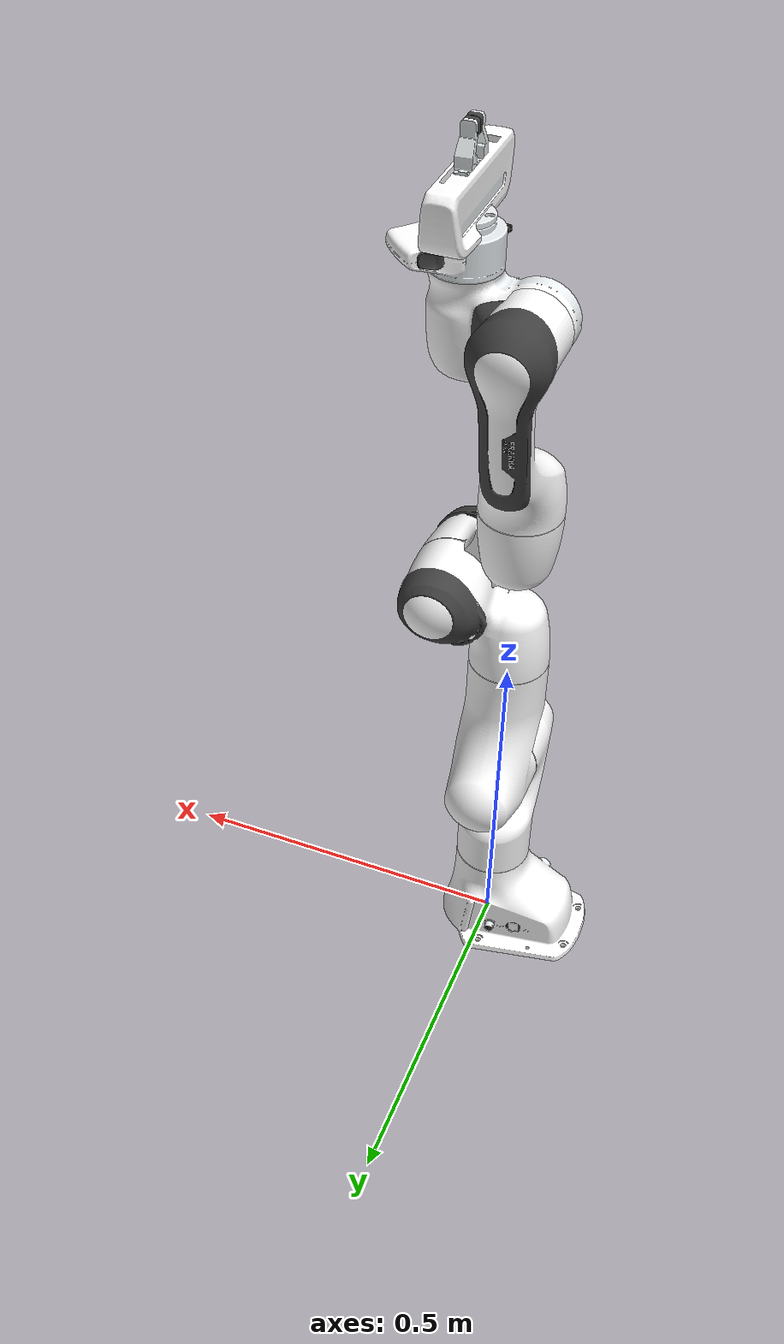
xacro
<?xml version="1.0" encoding="utf-8"?>
<robot xmlns:xacro="http://www.ros.org/wiki/xacro" name="panda">

  <!-- Empty link to referr everything to -->
  <link name="world" />
  <!-- Include arm and hand xacro files-->
  <xacro:include filename="panda_arm.xacro" />
  <xacro:include filename="panda_hand.xacro" />

  <!-- call the arm macro-->
  <xacro:panda_arm />
  <!-- call the hand macro-->
  <xacro:panda_hand ns="panda" rpy="0 0 0" connected_to="panda_link8" />

</robot>

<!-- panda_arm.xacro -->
<robot xmlns:xacro="http://www.ros.org/wiki/xacro" name="panda_arm">

  <!--Correct
  masses-->
  <xacro:property name="mass_link0" value="3.06357" />
  <xacro:property name="mass_link1" value="2.34471" />
  <xacro:property name="mass_link2" value="2.36414" />
  <xacro:property name="mass_link3" value="2.38050" />
  <xacro:property name="mass_link4" value="2.42754" />
  <xacro:property name="mass_link5" value="3.49611" />
  <xacro:property name="mass_link6" value="1.46736" />
  <xacro:property name="mass_link7" value="0.45606" />
  <xacro:property name="mass_link8" value="0.001" />

  <!-- Wrong masses to test adaptability of the algorithms, on purpose off by 20% -->

  <xacro:property name="link0_cog" value="-0.029190 -0.000879 0.056603" />
  <xacro:property name="link1_cog" value="0.000011 -0.031266 -0.069373" />
  <xacro:property name="link2_cog" value="-0.000013 -0.070322 0.031178" />
  <xacro:property name="link3_cog" value="0.044348 0.024928 -0.038130" />
  <xacro:property name="link4_cog" value="-0.038550 0.039526 0.024716" />
  <xacro:property name="link5_cog" value="-0.000064 0.038412 -0.109970" />
  <xacro:property name="link6_cog" value="0.051002 0.006933 0.006169" />
  <xacro:property name="link7_cog" value="0.010361 0.010360 0.079108" />

  <xacro:macro name="cylinder_inertial" params="radius length mass *origin">
    <inertial>
      <mass value="${mass}" />
      <xacro:insert_block name="origin" />
      <inertia ixx="${0.0833333 * mass * (3 * radius * radius + length * length)}" ixy="0.0"
        ixz="0.0"
        iyy="${0.0833333 * mass * (3 * radius * radius + length * length)}" iyz="0.0"
        izz="${0.5 * mass * radius * radius}" />
    </inertial>
  </xacro:macro>

  <xacro:macro name="panda_arm"
    params="arm_id:='panda' description_pkg:='arm_description' connected_to:='' xyz:='0 0 0' rpy:='0 0 0'">
    <xacro:unless value="${not connected_to}">
      <joint name="${arm_id}_joint_${connected_to}" type="fixed">
        <parent link="${connected_to}" />
        <child link="${arm_id}_link0" />
        <origin rpy="${rpy}" xyz="${xyz}" />
      </joint>
    </xacro:unless>

    <xacro:property
      name="joint_damping" value="1.0" />

    <joint name="robot_to_world" type="fixed">
      <parent link="world" />
      <child link="${arm_id}_link0" />
      <origin xyz="0.0 0.0 0.0" rpy="0.0 0.0 0.0" />
      <dynamics damping="${joint_damping}" />
    </joint>

    <link name="${arm_id}_link0">
      <visual>
        <geometry>
          <mesh filename="package://arm_description/meshes/visual/link0.dae" />
        </geometry>
      </visual>
      <collision>
        <geometry>
          <mesh filename="package://arm_description/meshes/collision/link0.stl" />
        </geometry>
      </collision>
      <inertial>
        <origin xyz="${link0_cog}" rpy="0 0 0" />
        <mass value="${mass_link0}" />
        <inertia ixx="0.009" iyy="0.0122" izz="0.0122" ixy="0.0" ixz="-0.00010" iyz="0.0" />
      </inertial>
    </link>
    <link name="${arm_id}_link1">
      <visual>
        <geometry>
          <mesh filename="package://arm_description/meshes/visual/link1.dae" />
        </geometry>
      </visual>
      <collision>
        <geometry>
          <mesh filename="package://arm_description/meshes/collision/link1.stl" />
        </geometry>
      </collision>
      <inertial>
        <origin xyz="${link1_cog}" rpy="0 0 0" />
        <mass value="${mass_link1}" />
        <inertia ixx="0.01418" iyy="0.01181" izz="0.005515" ixy="0.0" ixz="0.0" iyz="0.00236" />
      </inertial>
    </link>
    <joint
      name="${arm_id}_joint1" type="revolute">
      <safety_controller k_position="100.0" k_velocity="40.0" soft_lower_limit="-2.8973"
        soft_upper_limit="2.8973" />
      <origin rpy="0 0 0" xyz="0 0 0.333" />
      <parent link="${arm_id}_link0" />
      <child link="${arm_id}_link1" />
      <axis xyz="0 0 1" />
      <limit effort="87" lower="${-pi}" upper="${pi}" velocity="2.1750" />
      <dynamics damping="${joint_damping}" />
    </joint>
    <link name="${arm_id}_link2">
      <visual>
        <geometry>
          <mesh filename="package://arm_description/meshes/visual/link2.dae" />
        </geometry>
      </visual>
      <collision>
        <geometry>
          <mesh filename="package://arm_description/meshes/collision/link2.stl" />
        </geometry>
      </collision>
      <inertial>
        <origin xyz="${link2_cog}" rpy="0 0 0" />
        <mass value="${mass_link2}" />
        <inertia ixx="0.014" ixy="0.0" ixz="0.0" iyy="0.0055" iyz="-0.0023" izz="0.01259" />
      </inertial>
    </link>
    <joint
      name="${arm_id}_joint2" type="revolute">
      <safety_controller k_position="100.0" k_velocity="40.0" soft_lower_limit="-1.7628"
        soft_upper_limit="1.7628" />
      <origin rpy="${-pi/2} 0 0" xyz="0 0 0" />
      <parent link="${arm_id}_link1" />
      <child link="${arm_id}_link2" />
      <axis xyz="0 0 1" />
      <limit effort="87" lower="${-pi}" upper="${pi}" velocity="2.1750" />
      <dynamics damping="${joint_damping}" />
    </joint>
    <link name="${arm_id}_link3">
      <visual>
        <geometry>
          <mesh filename="package://arm_description/meshes/visual/link3.dae" />
        </geometry>
      </visual>
      <collision>
        <geometry>
          <mesh filename="package://arm_description/meshes/collision/link3.stl" />
        </geometry>
      </collision>
      <inertial>
        <origin xyz="${link3_cog}" rpy="0 0 0" />
        <mass value="${mass_link3}" />
        <inertia ixx="0.00716" ixy="-0.00102" ixz="-0.02040" iyy="0.00920" iyz="-0.00102"
          izz="0.007159" />
      </inertial>
    </link>
    <joint name="${arm_id}_joint3"
      type="revolute">
      <safety_controller k_position="100.0" k_velocity="40.0" soft_lower_limit="-2.8973"
        soft_upper_limit="2.8973" />
      <origin rpy="${pi/2} 0 0" xyz="0 -0.316 0" />
      <parent link="${arm_id}_link2" />
      <child link="${arm_id}_link3" />
      <axis xyz="0 0 1" />
      <limit effort="87" lower="${-pi}" upper="${pi}" velocity="2.1750" />
      <dynamics damping="${joint_damping}" />
    </joint>
    <link name="${arm_id}_link4">
      <visual>
        <geometry>
          <mesh filename="package://arm_description/meshes/visual/link4.dae" />
        </geometry>
      </visual>
      <collision>
        <geometry>
          <mesh filename="package://arm_description/meshes/collision/link4.stl" />
        </geometry>
      </collision>
      <inertial>
        <origin xyz="${link4_cog}" rpy="0 0 0" />
        <mass value="${mass_link4}" />
        <inertia ixx="0.008164" ixy="0.003061" ixz="0.00102" iyy="0.008165" iyz="0.00102"
          izz="0.009185" />
      </inertial>
    </link>
    <joint name="${arm_id}_joint4"
      type="revolute">
      <safety_controller k_position="100.0" k_velocity="40.0" soft_lower_limit="-3.0718"
        soft_upper_limit="-0.0698" />
      <origin rpy="${pi/2} 0 0" xyz="0.0825 0 0" />
      <parent link="${arm_id}_link3" />
      <child link="${arm_id}_link4" />
      <axis xyz="0 0 1" />
      <limit effort="87" lower="${-pi}" upper="${pi}" velocity="2.1750" />
      <dynamics damping="${joint_damping}" />
    </joint>
    <link name="${arm_id}_link5">
      <visual>
        <geometry>
          <mesh filename="package://arm_description/meshes/visual/link5.dae" />
        </geometry>
      </visual>
      <collision>
        <geometry>
          <mesh filename="package://arm_description/meshes/collision/link5.stl" />
        </geometry>
      </collision>
      <inertial>
        <origin xyz="${link5_cog}" rpy="0 0 0" />
        <mass value="${mass_link5}" />
        <inertia ixx="0.0307" ixy="0.0" ixz="0.0" iyy="0.02761" iyz="-0.0613" izz="0.00818" />
      </inertial>
    </link>
    <joint
      name="${arm_id}_joint5" type="revolute">
      <safety_controller k_position="100.0" k_velocity="40.0" soft_lower_limit="-2.8973"
        soft_upper_limit="2.8973" />
      <origin rpy="${-pi/2} 0 0" xyz="-0.0825 0.384 0" />
      <parent link="${arm_id}_link4" />
      <child link="${arm_id}_link5" />
      <axis xyz="0 0 1" />
      <limit effort="87" lower="${-pi}" upper="${pi}" velocity="2.1750" />
      <dynamics damping="${joint_damping}" />
    </joint>
    <link name="${arm_id}_link6">
      <visual>
        <geometry>
          <mesh filename="package://arm_description/meshes/visual/link6.dae" />
        </geometry>
      </visual>
      <collision>
        <geometry>
          <mesh filename="package://arm_description/meshes/collision/link6.stl" />
        </geometry>
      </collision>
      <inertial>
        <origin xyz="${link6_cog}" rpy="0 0 0" />
        <mass value="${mass_link6}" />
        <inertia ixx="0.00205" ixy="0.0" ixz="0.0" iyy="0.004089" iyz="0" izz="0.00490" />
      </inertial>
    </link>
    <joint
      name="${arm_id}_joint6" type="revolute">
      <safety_controller k_position="100.0" k_velocity="40.0" soft_lower_limit="-0.0175"
        soft_upper_limit="3.7525" />
      <origin rpy="${-pi/2} 0 0" xyz="0 0 0" />
      <parent link="${arm_id}_link5" />
      <child link="${arm_id}_link6" />
      <axis xyz="0 0 1" />
      <limit effort="87" lower="${-pi}" upper="${pi}" velocity="2.1750" />
      <dynamics damping="${joint_damping}" />
    </joint>
    <link name="${arm_id}_link7">
      <visual>
        <geometry>
          <mesh filename="package://arm_description/meshes/visual/link7.dae" />
        </geometry>
      </visual>
      <collision>
        <geometry>
          <mesh filename="package://arm_description/meshes/collision/link7.stl" />
        </geometry>
      </collision>
      <inertial>
        <origin xyz="0 0 0" rpy="0 0 0" />
        <mass value="${mass_link7}" />
        <inertia ixx="0.3" ixy="0.0" ixz="0.0" iyy="0.3" iyz="0.0" izz="0.3" />
      </inertial>
    </link>
    <joint
      name="${arm_id}_joint7" type="revolute">
      <safety_controller k_position="100.0" k_velocity="40.0" soft_lower_limit="-2.8973"
        soft_upper_limit="2.8973" />
      <origin rpy="${pi/2} 0 0" xyz="0.088 0 0" />
      <parent link="${arm_id}_link6" />
      <child link="${arm_id}_link7" />
      <axis xyz="0 0 1" />
      <limit effort="12" lower="-2.8973" upper="2.8973" velocity="2.6100" />
      <dynamics damping="${joint_damping}" />
    </joint>
    <link name="${arm_id}_link8">
      <inertial>
        <origin xyz="0 0 0" rpy="0 0 0" />
        <mass value="${mass_link8}" />
        <inertia ixx="0.3" ixy="0.0" ixz="0.0" iyy="0.3" iyz="0.0" izz="0.3" />
      </inertial>
    </link>
    <joint
      name="${arm_id}_joint8" type="fixed">
      <origin rpy="0 0 0" xyz="0 0 0.107" />
      <parent link="${arm_id}_link7" />
      <child link="${arm_id}_link8" />
    </joint>

  </xacro:macro>

</robot>

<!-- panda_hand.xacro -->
<robot xmlns:xacro="http://www.ros.org/wiki/xacro" name="panda_hand">

  <xacro:macro name="panda_hand" params="connected_to:='' ns:='' rpy:='0 0 0' xyz:='0 0 0' ">
    <xacro:unless value="${connected_to == ''}">
      <joint name="${ns}_hand_joint" type="fixed">
        <parent link="${connected_to}" />
        <child link="${ns}_hand" />
        <origin xyz="${xyz}" rpy="${rpy}" />
      </joint>
    </xacro:unless>

    <!-- Hand Link -->
    <link name="${ns}_hand">
      <visual>
        <geometry>
          <mesh filename="package://arm_description/meshes/visual/hand.dae" />
        </geometry>
      </visual>
      <collision>
        <geometry>
          <mesh filename="package://arm_description/meshes/collision/hand.stl" />
        </geometry>
      </collision>
      <inertial>
        <origin xyz="0 0 0" rpy="0 0 0" />
        <mass value="0.68" />
        <inertia ixx="0.1" ixy="0.0" ixz="0.0" iyy="0.1" iyz="0.0" izz="0.1" />
      </inertial>
    </link>

    <!-- Left Finger Link -->
    <link name="${ns}_leftfinger">
      <visual>
        <geometry>
          <mesh filename="package://arm_description/meshes/visual/finger.dae" />
        </geometry>
      </visual>
      <collision>
        <geometry>
          <mesh filename="package://arm_description/meshes/collision/finger.stl" />
        </geometry>
      </collision>
      <inertial>
        <origin xyz="0 0 0.32" />
        <mass value="0.5" />
        <inertia ixx="0.002" ixy="0" ixz="0" iyy="0.002" iyz="0" izz="0.002" />
      </inertial>
    </link>

    <!-- Right Finger Link -->
    <link name="${ns}_rightfinger">
      <visual>
        <origin rpy="0 0 3.14159265359" xyz="0 0 0" />
        <geometry>
          <mesh filename="package://arm_description/meshes/visual/finger.dae" />
        </geometry>
      </visual>
      <collision>
        <origin rpy="0 0 3.14159265359" xyz="0 0 0" />
        <geometry>
          <mesh filename="package://arm_description/meshes/collision/finger.stl" />
        </geometry>
      </collision>
      <inertial>
        <origin xyz="0 0 0.32" />
        <mass value="0.5" />
        <inertia ixx="0.002" ixy="0" ixz="0" iyy="0.002" iyz="0" izz="0.002" />
      </inertial>
    </link>

    <!-- Left Finger Joint -->
    <joint name="${ns}_finger_joint1" type="prismatic">
      <parent link="${ns}_hand" />
      <child link="${ns}_leftfinger" />
      <origin rpy="0 0 0" xyz="0 0 0.0584" />
      <axis xyz="0 1 0" />
      <limit effort="40" lower="0.0" upper="0.04" velocity="0.2" />
    </joint>

    <!-- Right Finger Joint -->
    <joint name="${ns}_finger_joint2" type="prismatic">
      <parent link="${ns}_hand" />
      <child link="${ns}_rightfinger" />
      <origin rpy="0 0 0" xyz="0 0 0.0584" />
      <axis xyz="0 -1 0" />
      <limit effort="40" lower="0.0" upper="0.04" velocity="0.2" />
      <mimic joint="${ns}_finger_joint1" />
    </joint>

    <!-- Dummy fixed joint and link to match the original structure -->
    <joint name="${ns}_finger_joint2_mimic" type="fixed">
      <parent link="${ns}_hand" />
      <child link="${ns}_random" />
    </joint>
    <link name="${ns}_random"/>

  </xacro:macro>

</robot>
